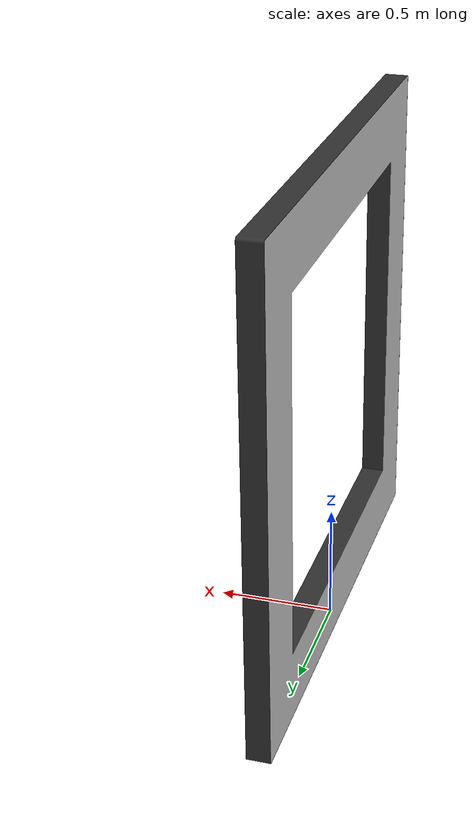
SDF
<sdf version="1.9">
  <model name="dc_single_gate">
    <static>true</static>

    <link name="link">
      <visual name="visual">
        <geometry>
          <mesh>
            <uri>model://dc_single_gate/meshes/dc_single_gate.dae</uri>
          </mesh>
        </geometry>
      </visual>

      <collision name="collision">
        <geometry>
          <mesh>
            <uri>model://dc_single_gate/meshes/dc_single_gate.dae</uri>
          </mesh>
        </geometry>
      </collision>
    </link>
  </model>
</sdf>
